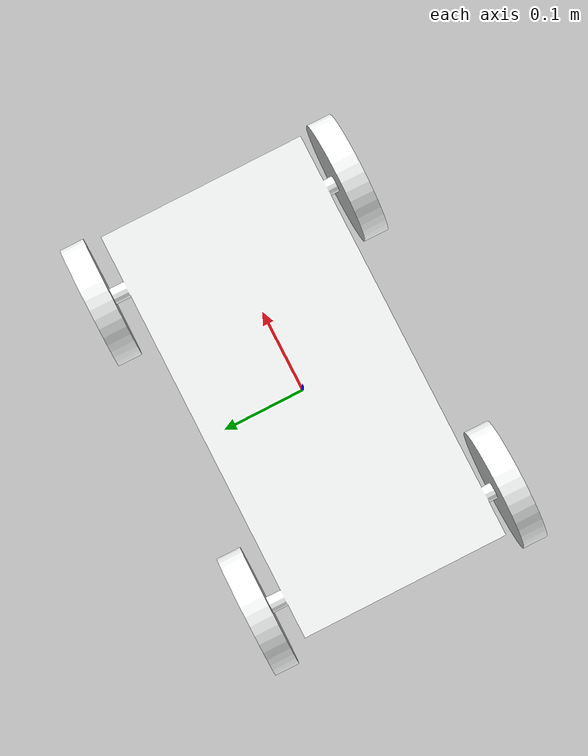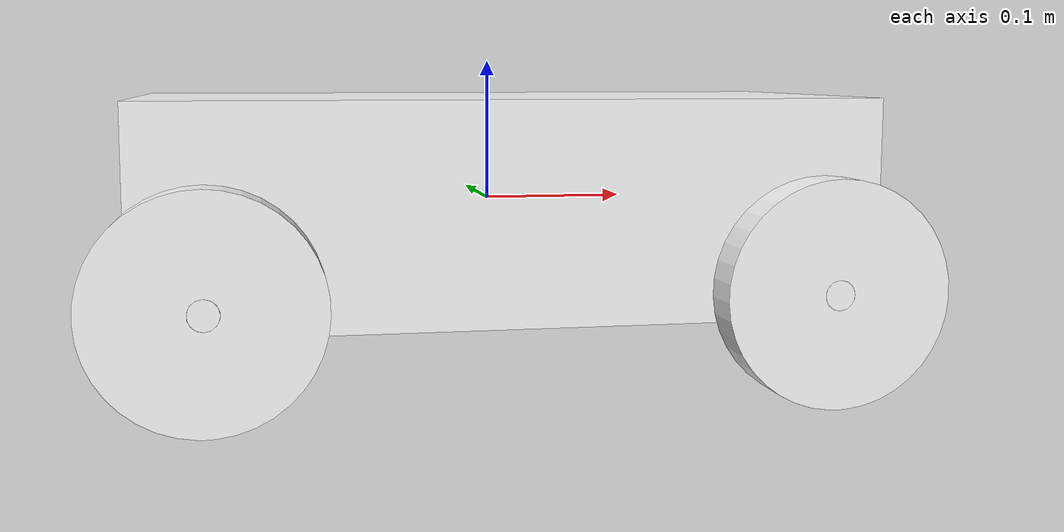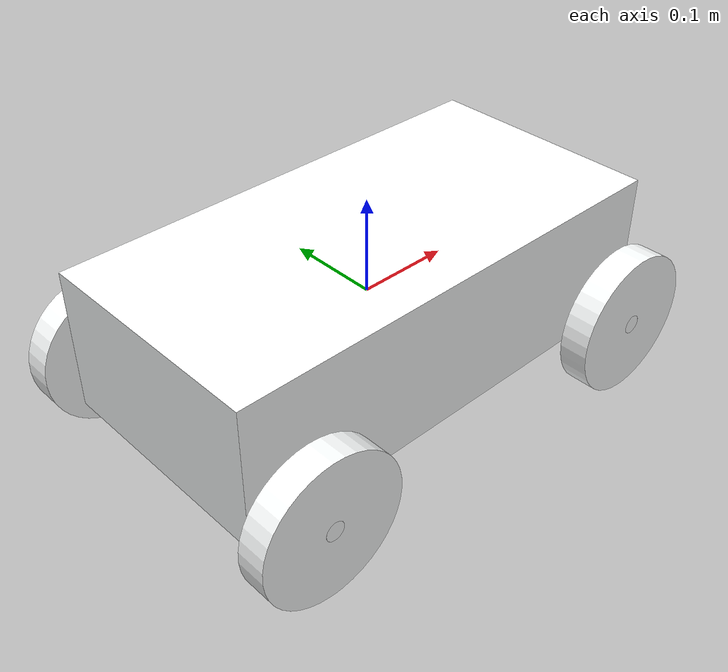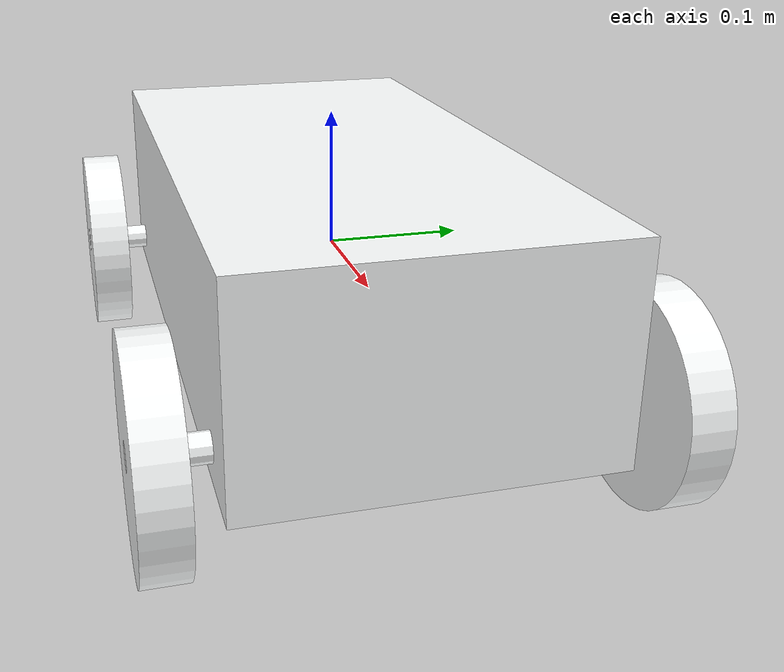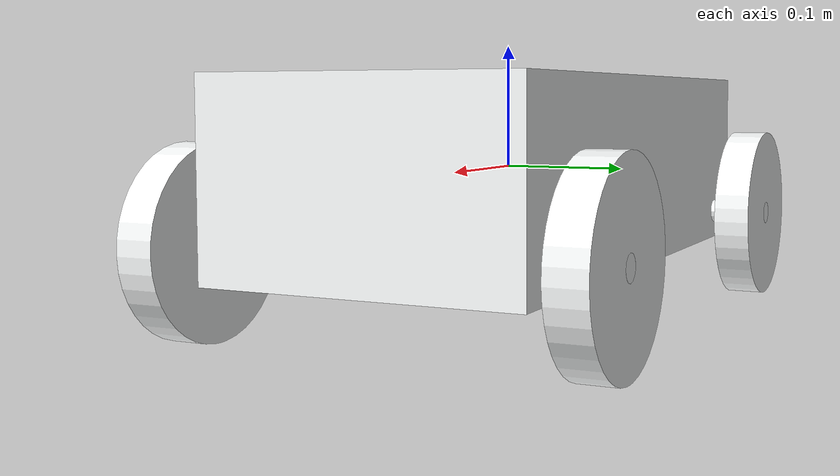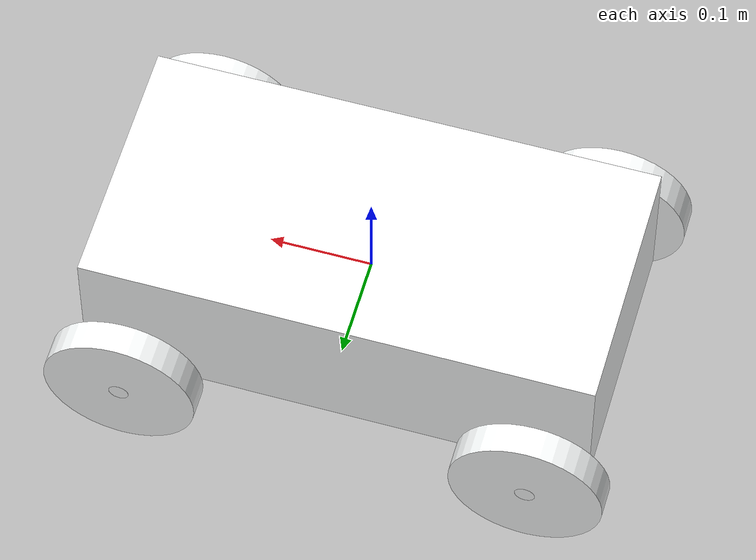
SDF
<sdf version='1.12'>
  <model name='Assem2.SLDASM'>
    <link name='base_link'>
      <inertial>
        <pose>-6.9230999999999998e-17 -2.9198000000000001e-17 -0.00016699 0 0 0</pose>
        <mass>18.812999999999999</mass>
        <inertia>
          <ixx>0.13439999999999999</ixx>
          <ixy>3.2822999999999999e-18</ixy>
          <ixz>1.4271000000000001e-18</ixz>
          <iyy>0.42845</iyy>
          <iyz>3.8622000000000002e-19</iyz>
          <izz>0.49221999999999999</izz>
        </inertia>
      </inertial>
      <collision name='base_link_collision'>
        <pose>0 0 0 0 0 0</pose>
        <geometry>
          <mesh>
            <scale>1 1 1</scale>
            <uri>model://robot_description/meshes/visual/base_link.STL</uri>
          </mesh>
        </geometry>
      </collision>
      <visual name='base_link_visual'>
        <pose>0 0 0 0 0 0</pose>
        <geometry>
          <mesh>
            <scale>1 1 1</scale>
            <uri>model://robot_description/meshes/visual/base_link.STL</uri>
          </mesh>
        </geometry>
        <material>
          <diffuse>0.990199983 1 1 1</diffuse>
          <ambient>0.990199983 1 1 1</ambient>
        </material>
      </visual>
    </link>
    <joint name='bl-joint' type='revolute'>
      <pose relative_to='base_link'>-0.20000000000000001 0.17499999999999999 -0.050000000000000003 0 0 0</pose>
      <parent>base_link</parent>
      <child>bl_Link</child>
      <axis>
        <xyz>0 1 0</xyz>
        <limit>
          <lower>-inf</lower>
          <upper>inf</upper>
        </limit>
        <dynamics>
          <spring_reference>0</spring_reference>
          <spring_stiffness>0</spring_stiffness>
        </dynamics>
      </axis>
    </joint>
    <link name='bl_Link'>
      <pose relative_to='bl-joint'>0 0 0 0 0 0</pose>
      <inertial>
        <pose>-2.7755999999999999e-17 -0.014999999999999999 -3.1224999999999998e-17 0 0 0</pose>
        <mass>0.52071999999999996</mass>
        <inertia>
          <ixx>0.00078432999999999997</ixx>
          <ixy>3.341e-49</ixy>
          <ixz>1.8616999999999999e-35</ixz>
          <iyy>0.0014905999999999999</iyy>
          <iyz>2.4725999999999998e-18</iyz>
          <izz>0.00078432999999999997</izz>
        </inertia>
      </inertial>
      <collision name='bl_Link_collision'>
        <pose>0 0 0 0 0 0</pose>
        <geometry>
          <mesh>
            <scale>1 1 1</scale>
            <uri>model://robot_description/meshes/visual/bl_Link.STL</uri>
          </mesh>
        </geometry>
      </collision>
      <visual name='bl_Link_visual'>
        <pose>0 0 0 0 0 0</pose>
        <geometry>
          <mesh>
            <scale>1 1 1</scale>
            <uri>model://robot_description/meshes/visual/bl_Link.STL</uri>
          </mesh>
        </geometry>
        <material>
          <diffuse>0.990199983 1 1 1</diffuse>
          <ambient>0.990199983 1 1 1</ambient>
        </material>
      </visual>
    </link>
    <joint name='br-joint' type='revolute'>
      <pose relative_to='base_link'>-0.20000000000000001 -0.17499999999999999 -0.050000000000000003 0 0 0</pose>
      <parent>base_link</parent>
      <child>br_Link</child>
      <axis>
        <xyz>0 1 0</xyz>
        <limit>
          <lower>-inf</lower>
          <upper>inf</upper>
        </limit>
        <dynamics>
          <spring_reference>0</spring_reference>
          <spring_stiffness>0</spring_stiffness>
        </dynamics>
      </axis>
    </joint>
    <link name='br_Link'>
      <pose relative_to='br-joint'>0 0 0 0 0 0</pose>
      <inertial>
        <pose>-2.7755999999999999e-17 0.014999999999999999 1.3878000000000001e-16 0 0 0</pose>
        <mass>0.52071999999999996</mass>
        <inertia>
          <ixx>0.00078432999999999997</ixx>
          <ixy>-2.1839000000000001e-36</ixy>
          <ixz>1.8616999999999999e-35</ixz>
          <iyy>0.0014905999999999999</iyy>
          <iyz>2.4725999999999998e-18</iyz>
          <izz>0.00078432999999999997</izz>
        </inertia>
      </inertial>
      <collision name='br_Link_collision'>
        <pose>0 0 0 0 0 0</pose>
        <geometry>
          <mesh>
            <scale>1 1 1</scale>
            <uri>model://robot_description/meshes/visual/br_Link.STL</uri>
          </mesh>
        </geometry>
      </collision>
      <visual name='br_Link_visual'>
        <pose>0 0 0 0 0 0</pose>
        <geometry>
          <mesh>
            <scale>1 1 1</scale>
            <uri>model://robot_description/meshes/visual/br_Link.STL</uri>
          </mesh>
        </geometry>
        <material>
          <diffuse>0.990199983 1 1 1</diffuse>
          <ambient>0.990199983 1 1 1</ambient>
        </material>
      </visual>
    </link>
    <joint name='fl-joint' type='revolute'>
      <pose relative_to='base_link'>0.20000000000000001 0.17499999999999999 -0.050000000000000003 0 0 0</pose>
      <parent>base_link</parent>
      <child>fl_Link</child>
      <axis>
        <xyz>0 1 0</xyz>
        <limit>
          <lower>-inf</lower>
          <upper>inf</upper>
        </limit>
        <dynamics>
          <spring_reference>0</spring_reference>
          <spring_stiffness>0</spring_stiffness>
        </dynamics>
      </axis>
    </joint>
    <link name='fl_Link'>
      <pose relative_to='fl-joint'>0 0 0 0 0 0</pose>
      <inertial>
        <pose>2.7755999999999999e-17 -0.014999999999999999 -4.8571999999999997e-17 0 0 0</pose>
        <mass>0.52071999999999996</mass>
        <inertia>
          <ixx>0.00078432999999999997</ixx>
          <ixy>-2.1839000000000001e-36</ixy>
          <ixz>1.8616999999999999e-35</ixz>
          <iyy>0.0014905999999999999</iyy>
          <iyz>2.4725999999999998e-18</iyz>
          <izz>0.00078432999999999997</izz>
        </inertia>
      </inertial>
      <collision name='fl_Link_collision'>
        <pose>0 0 0 0 0 0</pose>
        <geometry>
          <mesh>
            <scale>1 1 1</scale>
            <uri>model://robot_description/meshes/visual/fl_Link.STL</uri>
          </mesh>
        </geometry>
      </collision>
      <visual name='fl_Link_visual'>
        <pose>0 0 0 0 0 0</pose>
        <geometry>
          <mesh>
            <scale>1 1 1</scale>
            <uri>model://robot_description/meshes/visual/fl_Link.STL</uri>
          </mesh>
        </geometry>
        <material>
          <diffuse>0.990199983 1 1 1</diffuse>
          <ambient>0.990199983 1 1 1</ambient>
        </material>
      </visual>
    </link>
    <joint name='fr-joint' type='revolute'>
      <pose relative_to='base_link'>0.20000000000000001 -0.17499999999999999 -0.050000000000000003 0 0 0</pose>
      <parent>base_link</parent>
      <child>fr_Link</child>
      <axis>
        <xyz>0 1 0</xyz>
        <limit>
          <lower>-inf</lower>
          <upper>inf</upper>
        </limit>
        <dynamics>
          <spring_reference>0</spring_reference>
          <spring_stiffness>0</spring_stiffness>
        </dynamics>
      </axis>
    </joint>
    <link name='fr_Link'>
      <pose relative_to='fr-joint'>0 0 0 0 0 0</pose>
      <inertial>
        <pose>-5.5511e-17 0.014999999999999999 1.1796e-16 0 0 0</pose>
        <mass>0.52071999999999996</mass>
        <inertia>
          <ixx>0.00078432999999999997</ixx>
          <ixy>1.173e-36</ixy>
          <ixz>-1.7996999999999999e-39</ixz>
          <iyy>0.0014905999999999999</iyy>
          <iyz>2.4725999999999998e-18</iyz>
          <izz>0.00078432999999999997</izz>
        </inertia>
      </inertial>
      <collision name='fr_Link_collision'>
        <pose>0 0 0 0 0 0</pose>
        <geometry>
          <mesh>
            <scale>1 1 1</scale>
            <uri>model://robot_description/meshes/visual/fr_Link.STL</uri>
          </mesh>
        </geometry>
      </collision>
      <visual name='fr_Link_visual'>
        <pose>0 0 0 0 0 0</pose>
        <geometry>
          <mesh>
            <scale>1 1 1</scale>
            <uri>model://robot_description/meshes/visual/fr_Link.STL</uri>
          </mesh>
        </geometry>
        <material>
          <diffuse>0.990199983 1 1 1</diffuse>
          <ambient>0.990199983 1 1 1</ambient>
        </material>
      </visual>
    </link>
    <plugin name='gz::sim::systems::DiffDrive' filename='gz-sim-diff-drive-system'>
      <topic>/cmd_vel</topic>
      <left_joint>fl-joint</left_joint>
      <left_joint>bl-joint</left_joint>
      <right_joint>fr-joint</right_joint>
      <right_joint>br-joint</right_joint>
      <wheel_separation>0.45</wheel_separation>
      <wheel_radius>0.1</wheel_radius>
      <max_velocity>3.0</max_velocity>
      <max_linear_acceleration>1</max_linear_acceleration>
      <min_linear_acceleration>-1</min_linear_acceleration>
      <max_angular_acceleration>2</max_angular_acceleration>
      <min_angular_acceleration>-2</min_angular_acceleration>
      <max_linear_velocity>0.5</max_linear_velocity>
      <min_linear_velocity>-0.5</min_linear_velocity>
      <max_angular_velocity>1</max_angular_velocity>
      <min_angular_velocity>-1</min_angular_velocity>
      <odom_topic>odom</odom_topic>
      <tf_topic>tf</tf_topic>
      <frame_id>odom</frame_id>
      <child_frame_id>base_footprint</child_frame_id>
      <odom_publish_frequency>30</odom_publish_frequency>
    </plugin>
    <plugin name='gz::sim::systems::JointStatePublisher' filename='gz-sim-joint-state-publisher-system'>
      <topic>joint_states</topic>
      <joint_name>fl-joint</joint_name>
      <joint_name>fr-joint</joint_name>
      <joint_name>bl-joint</joint_name>
      <joint_name>br-joint</joint_name>
    </plugin>
  </model>
</sdf>
